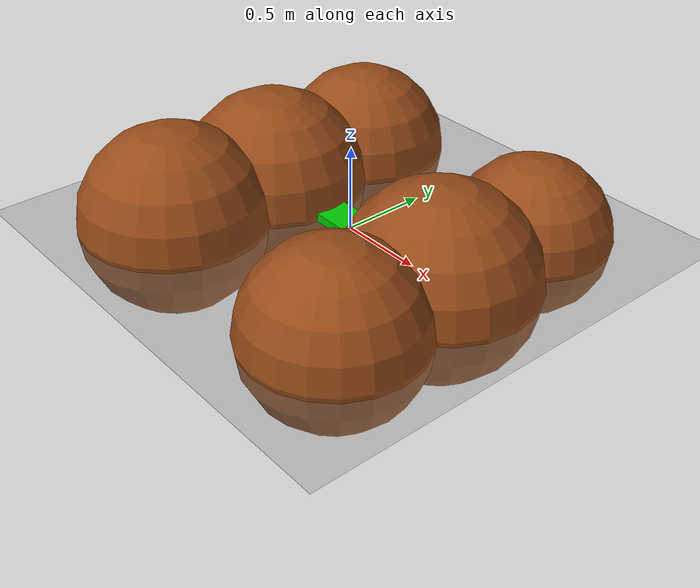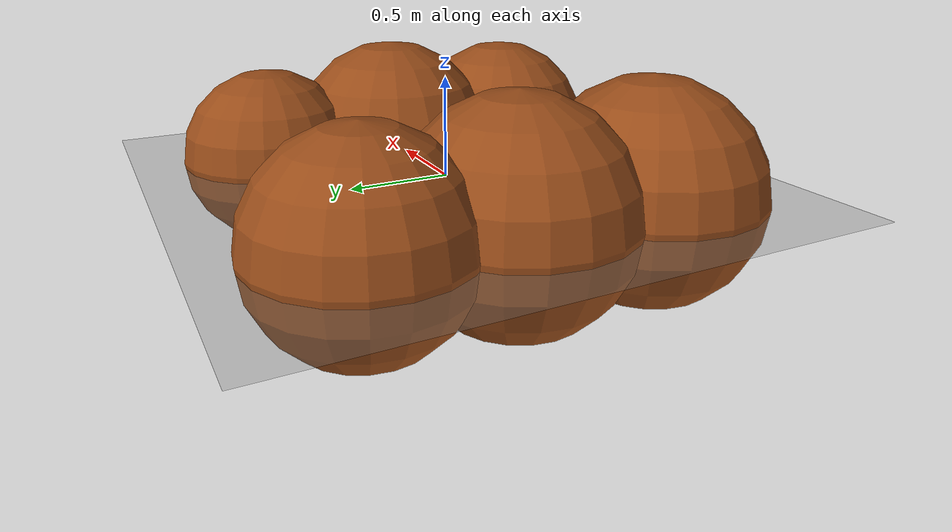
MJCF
<mujoco model="car_obstacle_env">
    <option timestep="0.01" integrator="Euler" gravity="0 0 0.0" />

    <worldbody>
        <light diffuse=".5 .5 .5" pos="0 0 3" dir="0 0 -1" />
        <!-- Table plane at z=0. Kept contype/conaffinity from pushT.xml assuming planar environment -->
        <geom name="table" type="plane" pos="0 0 0" size="2 2 0.01" rgba="0.5 0.5 0.5 1" contype="0" conaffinity="0" />

        <!-- Car -->
        <!-- Car's initial position is (0,0) on XY plane, with its base at z=0.025 -->
        <body name="car" pos="0.0 0.0 0.025">
            <!-- Car geom: L=0.4, W=0.2, H=0.05 centered at body origin -->
            <geom name="car_geom" type="box" size="0.225 0.1 0.025" rgba="0 0.8 0 1" mass="1.0" contype="1" conaffinity="0"/>
            <!-- Joints for planar movement and rotation -->
            <joint name="car_x" type="slide" axis="1 0 0" limited="true" range="-2 2" damping="0.01"/>
            <joint name="car_y" type="slide" axis="0 1 0" limited="true" range="-2 2" damping="0.01"/>
            <joint name="car_z_rot" type="hinge" axis="0 0 1" limited="false"  damping="0.01"/>
        </body>

        <!-- Fixed Obstacles -->
        <!-- Obstacles are boxes of size 0.2x0.2x0.05, positioned on the table -->
        <body name="obstacle1" pos="0.7 0.7 0.025">
            <geom name="obs1_geom" type="sphere" size="0.45" rgba="0.6 0.3 0.1 1"/>
        </body>

        <body name="obstacle2" pos="-0.7 0.7 0.025">
            <geom name="obs2_geom" type="sphere" size="0.50" rgba="0.6 0.3 0.1 1" contype="0" conaffinity="1"/>
        </body>
        <body name="obstacle3" pos="0.7 -0.7 0.025">
            <geom name="obs3_geom" type="sphere" size="0.50" rgba="0.6 0.3 0.1 1" contype="0" conaffinity="1"/>
        </body>
        <body name="obstacle4" pos="-0.7 -0.7 0.025">
            <geom name="obs4_geom" type="sphere" size="0.55" rgba="0.6 0.3 0.1 1" contype="0" conaffinity="1"/>
        </body>
        <body name="obstacle5" pos="0.7 0.0 0.025">
            <geom name="obs5_geom" type="sphere" size="0.55" rgba="0.6 0.3 0.1 1" contype="0" conaffinity="1"/>
        </body>
        <body name="obstacle6" pos="-0.7 0.0 0.025">
            <geom name="obs6_geom" type="sphere" size="0.55" rgba="0.6 0.3 0.1 1" contype="0" conaffinity="1"/>
        </body>
    </worldbody>

    <actuator>
        <!-- PD motor actuators to track desired velocity -->
        <!-- kv is velocity gain (D), gear scales control signal, kp is implicitly set via joint stiffness if needed -->
        <velocity name="car_motor_x" joint="car_x" ctrlrange="-2 2" gear="1"  kv="1" />
        <velocity name="car_motor_y" joint="car_y" ctrlrange="-10 10" gear="2" kv="1" />
        <velocity name="car_motor_rz" joint="car_z_rot" ctrlrange="-10 10" gear="1" kv="1" />
    </actuator>

</mujoco>
